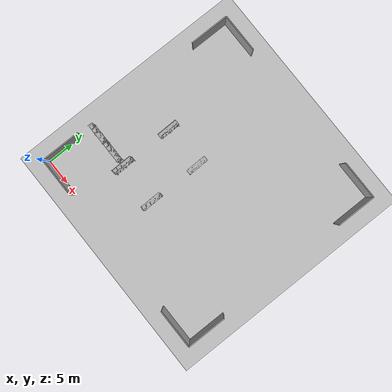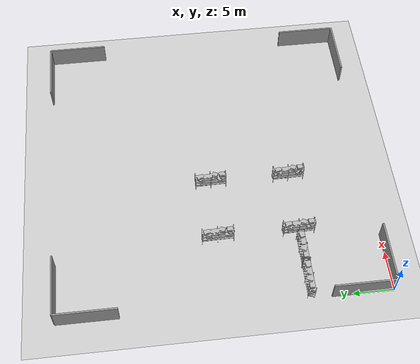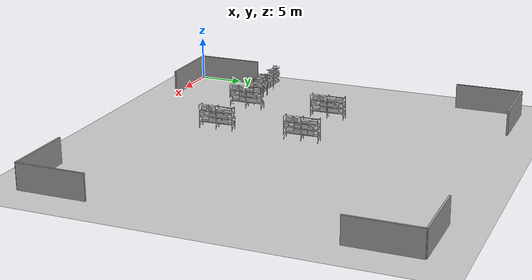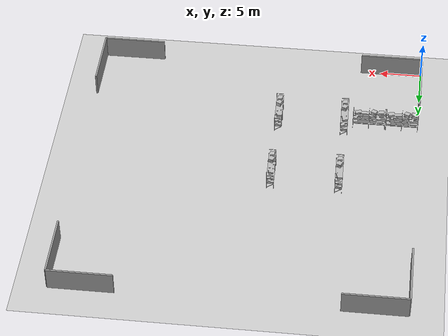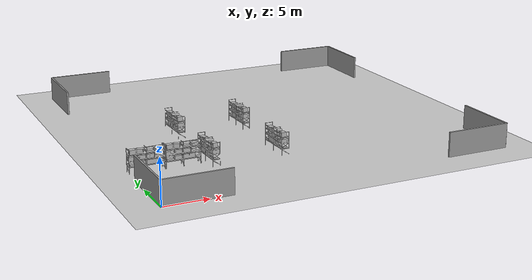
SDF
<?xml version="1.0"?>
<sdf version="1.6">
  <world name="default">

    <include>
      <uri>model://ground_plane</uri>
    </include>

    <include>
      <uri>model://sun</uri>
    </include>

    <scene>
      <shadows>false</shadows>
    </scene>

    <gui fullscreen='0'>
      <camera name='user_camera'>
        <pose frame=''>0.319654 -0.235002 9.29441 0 1.5138 0.009599</pose>
        <view_controller>orbit</view_controller>
        <projection_type>perspective</projection_type>
      </camera>
    </gui>

    <physics type="ode">
      <real_time_update_rate>1000.0</real_time_update_rate>
      <max_step_size>0.001</max_step_size>
      <real_time_factor>1</real_time_factor>
      <ode>
        <solver>
          <type>quick</type>
          <iters>150</iters>
          <precon_iters>0</precon_iters>
          <sor>1.400000</sor>
          <use_dynamic_moi_rescaling>1</use_dynamic_moi_rescaling>
        </solver>
        <constraints>
          <cfm>0.00001</cfm>
          <erp>0.2</erp>
          <contact_max_correcting_vel>2000.000000</contact_max_correcting_vel>
          <contact_surface_layer>0.01000</contact_surface_layer>
        </constraints>
      </ode>
    </physics>

    <!-- Initialzie racks  -->
    <model name="warehouse_storage_racks_01">
        <include>
           <uri>model://warehouse_storage_racks</uri>
        </include>
        <pose frame="">9.0 10.0 0 0 0 1.59</pose>
	</model>

	<model name="grey_wall">
        <include>
            <uri>model://grey_wall</uri>
            <scale>3 3 1</scale>
        </include>
        <pose frame="">3.75 0.0 0.0 0.0 0.0 0.0</pose>
	</model>

	<model name="grey_wall_1">
        <include>
            <uri>model://grey_wall</uri>
        </include>
        <pose frame="">3.75 0.0 0.0 0.0 0.0 0.0</pose>
	</model>

	<model name="grey_wall_2">
        <include>
            <uri>model://grey_wall</uri>

        </include>
        <pose frame="">0.0 3.75 0.0 0.0 0.0 1.57</pose>
	</model>

	<model name="grey_wall_3">
        <include>
            <uri>model://grey_wall</uri>
        </include>
        <pose frame="">36.25 0.0 0.0 0.0 0.0 0.0</pose>
	</model>

	<model name="grey_wall_4">
        <include>
            <uri>model://grey_wall</uri>
        </include>
        <pose frame="">40.0 3.75 0.0 0.0 0.0 1.57</pose>
	</model>

	<model name="grey_wall_5">
        <include>
            <uri>model://grey_wall</uri>
        </include>
        <pose frame="">40.0 36.25 0.0 0.0 0.0 1.57</pose>
	</model>

	<model name="grey_wall_6">
        <include>
            <uri>model://grey_wall</uri>
        </include>
        <pose frame="">36.25 40.0 0.0 0.0 0.0 0.0</pose>
	</model>

	<model name="grey_wall_7">
        <include>
            <uri>model://grey_wall</uri>
        </include>
        <pose frame="">3.75 40.0 0.0 0.0 0.0 0.0</pose>
	</model>

	<model name="grey_wall_8">
        <include>
            <uri>model://grey_wall</uri>
        </include>
        <pose frame="">0.0 36.25 0.0 0.0 0.0 1.57</pose>
	</model>

	<model name="warehouse_storage_racks_02">
        <include>
            <uri>model://warehouse_storage_racks</uri>
        </include>
        <pose frame="">9.0 20.0 0 0 0 1.59</pose>
	</model>

	<model name="warehouse_storage_racks_03">
        <include>
           <uri>model://warehouse_storage_racks</uri>
        </include>
        <pose frame="">17.0 10.0 0 0 0 1.59</pose>
	</model>

	<model name="warehouse_storage_racks_04">
        <include>
            <uri>model://warehouse_storage_racks</uri>
        </include>
        <pose frame="">17.0 20.0 0 0 0 1.59</pose>
	</model>

	<model name="warehouse_storage_racks_05">
        <include>
            <uri>model://warehouse_storage_racks</uri>
        </include>
        <pose frame=""> 2.0 10.0 0 0 0 0.0</pose>
	</model>

	<model name="warehouse_storage_racks_06">
        <include>
            <uri>model://warehouse_storage_racks</uri>
        </include>
        <pose frame="">6 10 0 0 0 0</pose>
	</model>

	<!-- for details see https://github.com/marinaKollmitz/gazebo_ros_2Dmap_plugin -->
	<!-- this create the occupancy map  -->
	<plugin name='gazebo_occupancy_map' filename='libgazebo_2Dmap_plugin.so'>
    <map_resolution>0.05</map_resolution>
    <map_height>4.0</map_height>
    <map_size_x>40</map_size_x>
    <map_size_y>40</map_size_y>
    <init_robot_x>0</init_robot_x>
    <init_robot_y>0</init_robot_y>
	</plugin>

  </world>
</sdf>

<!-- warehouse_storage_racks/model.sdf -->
<sdf version="1.6">
  <model name="warehouse_storage_racks">
    <link name="link">
      <inertial>
        <mass>30</mass>
        <inertia>
          <ixx>30</ixx>
          <ixy>0</ixy>
          <ixz>0</ixz>
          <iyy>30</iyy>
          <iyz>0</iyz>
          <izz>30</izz>
        </inertia>
      </inertial>
      <collision name="collision">
        <geometry>
          <mesh>
            <uri>model://warehouse_storage_racks/meshes/warehouse_Storage_Racks_collision.DAE</uri>
            <scale>1 1 1</scale>
          </mesh>
        </geometry>
		<surface>
          <friction>
            <ode>
              <mu>0.2</mu>
              <mu2>0.2</mu2>
              <fdir1>0 0 0</fdir1>
              <slip1>0</slip1>
              <slip2>0</slip2>
            </ode>
        </friction>
          </surface>
      </collision>
      <visual name="visual">
	    <geometry>
          <mesh>
           <uri>model://warehouse_storage_racks/meshes/warehouse_Storage_Racks_visual.DAE</uri>
          </mesh>
        </geometry>
      <meta> <layer> 1 </layer></meta>
</visual>
    </link>
<static>1</static>
  </model>
</sdf>

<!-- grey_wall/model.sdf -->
<sdf version="1.5">
  <model name="grey_wall">
    <static>true</static>
    <link name="link">
      <pose>0 0 1.4 0 0 0</pose>
      <collision name="collision">
        <geometry>
          <box>
            <size>7.5 0.2 2.8</size>
          </box>
        </geometry>
      </collision>
      <visual name="visual">
        <cast_shadows>false</cast_shadows>
        <geometry>
          <box>
            <size>7.5 0.2 2.8</size>
          </box>
        </geometry>
        <material>
          <script>
            <uri>model://../model_source/models/grey_wall/materials/scripts</uri>
            <uri>model://../model_source/models/grey_wall/materials/textures</uri>
            <name>vrc/grey_wall</name>
          </script>
        </material>
      </visual>
    </link>
  </model>
</sdf>
